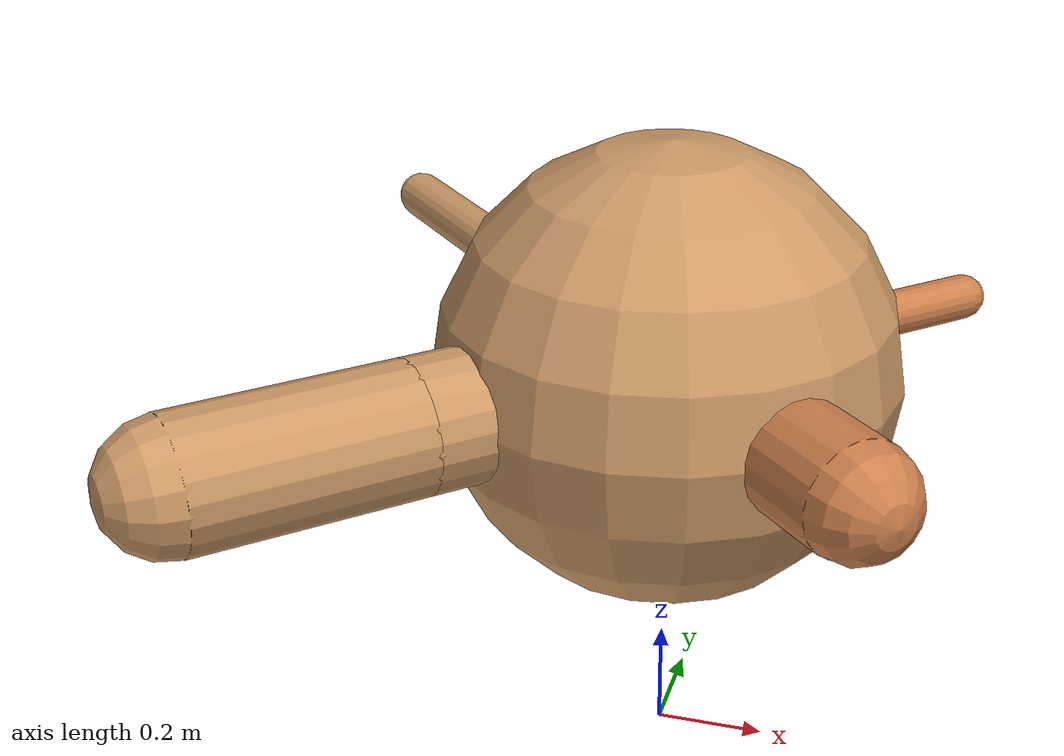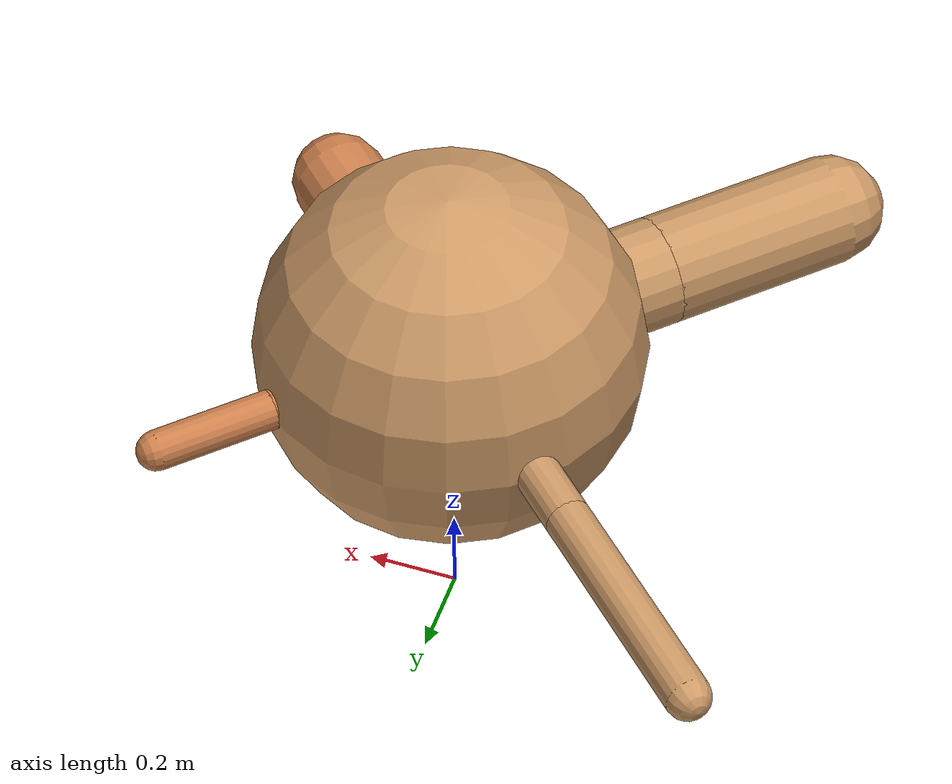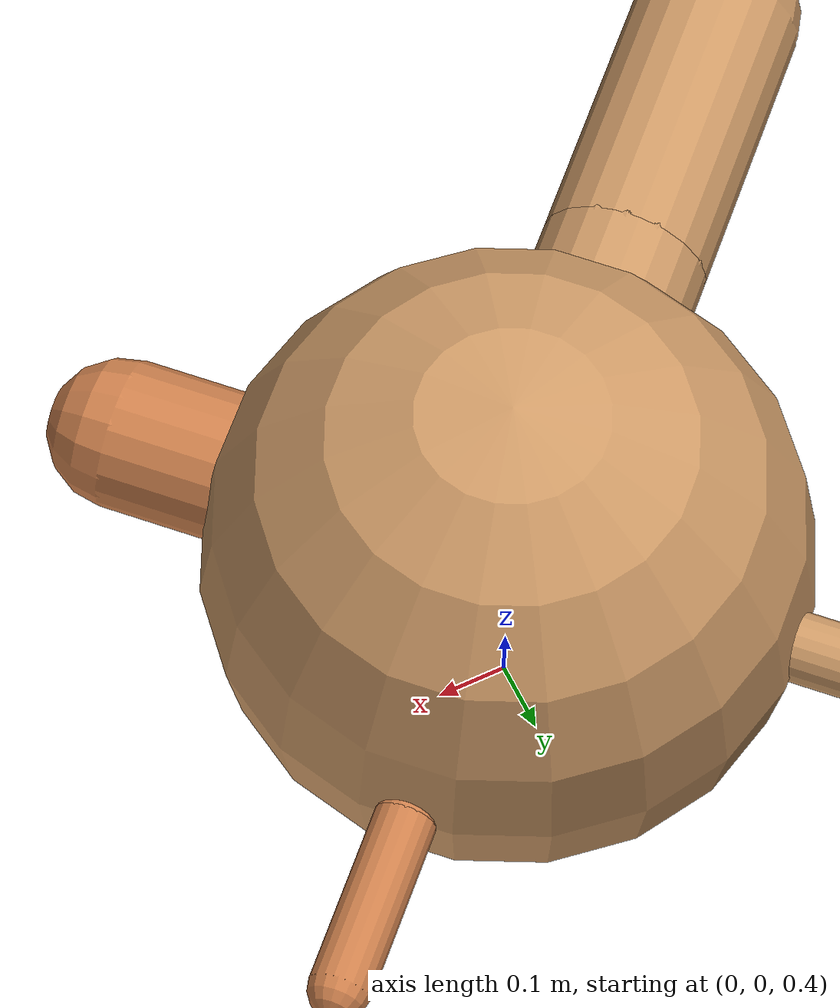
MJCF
<?xml version="1.0" ?>
<mujoco model="ant">

	<compiler angle="degree" coordinate="local" inertiafromgeom="true"/>

	<option integrator="RK4" timestep="0.01"/>

	<custom>

		<numeric data="0.0 0.0 0.55 1.0 0.0 0.0 0.0 0.0 1.0 0.0 -1.0 0.0 -1.0 0.0 1.0" name="init_qpos"/>

	</custom>

	<default>

		<joint armature="1" damping="1" limited="true"/>

		<geom conaffinity="0" condim="3" density="5.0" friction="1.5 0.1 0.1" margin="0.01" rgba="0.8 0.6 0.4 1"/>

	</default>

	<worldbody>

		<body name="torso" pos="0 0 0.75">

			<geom name="torso_geom" pos="0 0 0" size="0.4166387342130633" type="sphere"/>

			<!--joint armature="0" damping="0" limited="false" margin="0.01" name="root" pos="0 0 0" type="free"/-->

			<body name="front_left_leg" pos="0 0 0">

				<geom fromto="0 0 0 0.2 0.2 0" name="aux_1_geom" size="0.04255034130166534" type="capsule" rgba=".8 .5 .3 1"/>

				<body name="aux_1" pos="0.2 0.2 0">

					<joint axis="0 0 1" name="hip_1" pos="0.0 0.0 0.0" range="-40 40" type="hinge"/>

					<geom fromto="0 0 0 0.09039598962095513 0.09039598962095513 0" name="left_leg_geom" size="0.04255034130166534" type="capsule" rgba=".8 .5 .3 1"/>

					<body pos="0.09039598962095513 0.09039598962095513 0" name="front_left_foot">

						<joint axis="-1 1 0" name="ankle_1" pos="0.0 0.0 0.0" range="30 100" type="hinge"/>

						<geom fromto="0 0 0 0.18079197924191026 0.18079197924191026 0" name="left_ankle_geom" size="0.04255034130166534" type="capsule" rgba=".8 .5 .3 1"/>

					</body>

				</body>

			</body>

			<body name="front_right_leg" pos="0 0 0">

				<geom fromto="0 0 0 -0.2 0.2 0" name="aux_2_geom" size="0.0483766068212967" type="capsule"/>

				<body name="aux_2" pos="-0.2 0.2 0">

					<joint axis="0 0 1" name="hip_2" pos="0.0 0.0 0.0" range="-40 40" type="hinge"/>

					<geom fromto="0 0 0 -0.18066801736096327 0.18066801736096327 0" name="right_leg_geom" size="0.0483766068212967" type="capsule"/>

					<body pos="-0.18066801736096327 0.18066801736096327 0" name="front_right_foot">

						<joint axis="1 1 0" name="ankle_2" pos="0.0 0.0 0.0" range="-100 -30" type="hinge"/>

						<geom fromto="0 0 0 -0.36133603472192655 0.36133603472192655 0" name="right_ankle_geom" size="0.0483766068212967" type="capsule"/>

					</body>

				</body>

			</body>

			<body name="left_back_leg" pos="0 0 0">

				<geom fromto="0 0 0 -0.2 -0.2 0" name="aux_3_geom" size="0.11817929848007142" type="capsule"/>

				<body name="aux_3" pos="-0.2 -0.2 0">

					<joint axis="0 0 1" name="hip_3" pos="0.0 0.0 0.0" range="-40 40" type="hinge"/>

					<geom fromto="0 0 0 -0.14684906331613753 -0.14684906331613753 0" name="back_leg_geom" size="0.11817929848007142" type="capsule"/>

					<body pos="-0.14684906331613753 -0.14684906331613753 0" name="left_back_foot">

						<joint axis="-1 1 0" name="ankle_3" pos="0.0 0.0 0.0" range="-100 -30" type="hinge"/>

						<geom fromto="0 0 0 -0.29369812663227507 -0.29369812663227507 0" name="third_ankle_geom" size="0.11817929848007142" type="capsule"/>

					</body>

				</body>

			</body>

			<body name="right_back_leg" pos="0 0 0">

				<geom fromto="0 0 0 0.2 -0.2 0" name="aux_4_geom" size="0.10368426317407177" type="capsule" rgba=".8 .5 .3 1"/>

				<body name="aux_4" pos="0.2 -0.2 0">

					<joint axis="0 0 1" name="hip_4" pos="0.0 0.0 0.0" range="-40 40" type="hinge"/>

					<geom fromto="0 0 0 0.06378969081710543 -0.06378969081710543 0" name="rightback_leg_geom" size="0.10368426317407177" type="capsule" rgba=".8 .5 .3 1"/>

					<body pos="0.06378969081710543 -0.06378969081710543 0" name="right_back_foot">

						<joint axis="1 1 0" name="ankle_4" pos="0.0 0.0 0.0" range="30 100" type="hinge"/>

						<geom fromto="0 0 0 0.12757938163421087 -0.12757938163421087 0" name="fourth_ankle_geom" size="0.10368426317407177" type="capsule" rgba=".8 .5 .3 1"/>

					</body>

				</body>

			</body>

		</body>

	</worldbody>

	<actuator>

		<motor ctrllimited="true" ctrlrange="-1.0 1.0" joint="hip_4" gear="150"/>

		<motor ctrllimited="true" ctrlrange="-1.0 1.0" joint="ankle_4" gear="150"/>

		<motor ctrllimited="true" ctrlrange="-1.0 1.0" joint="hip_1" gear="150"/>

		<motor ctrllimited="true" ctrlrange="-1.0 1.0" joint="ankle_1" gear="150"/>

		<motor ctrllimited="true" ctrlrange="-1.0 1.0" joint="hip_2" gear="150"/>

		<motor ctrllimited="true" ctrlrange="-1.0 1.0" joint="ankle_2" gear="150"/>

		<motor ctrllimited="true" ctrlrange="-1.0 1.0" joint="hip_3" gear="150"/>

		<motor ctrllimited="true" ctrlrange="-1.0 1.0" joint="ankle_3" gear="150"/>

	</actuator>

</mujoco>
